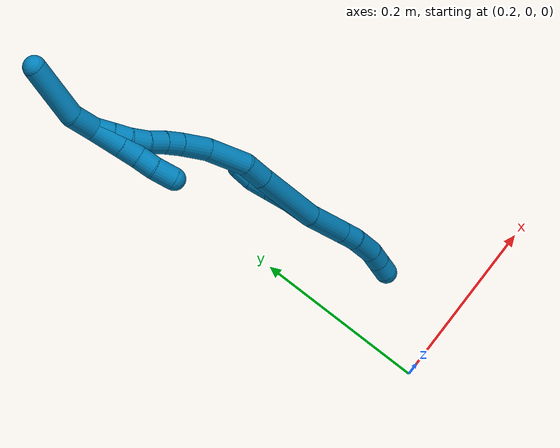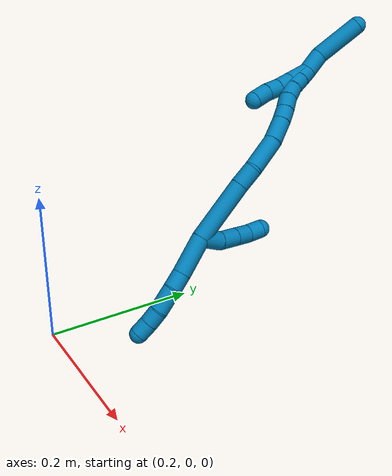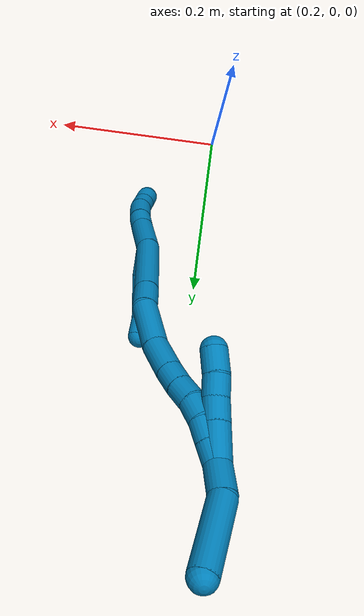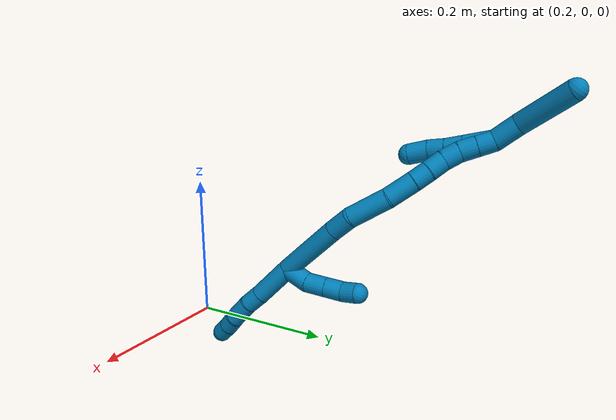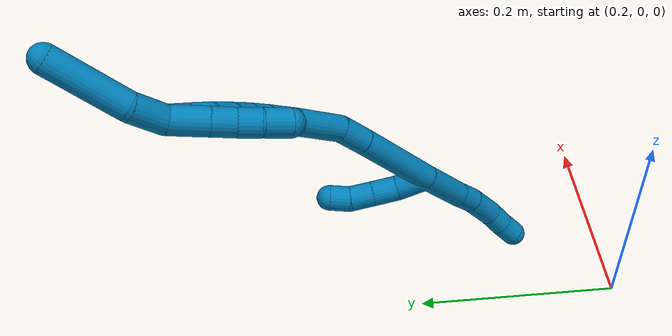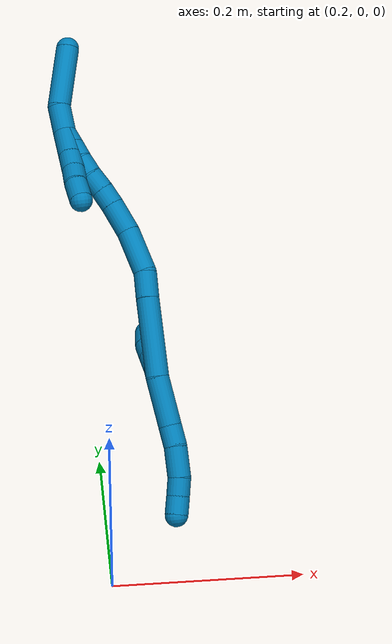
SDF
<sdf version="1.7">
 <world name="default">
  <model name="9">
   <static>0</static>
   <link name="9">
    <collision name="collision-cylinder-e_1_2_8">
     <pose>0.003473 -0.003365 -0.026442 3.01501 0.129565 1.59411</pose>
     <geometry><cylinder><radius>0.0125</radius><length>0.053762</length></cylinder></geometry>
     <surface>
      <friction><ode><mu>1.16</mu><mu2>1.16</mu2><slip1>0</slip1><slip2>0</slip2></ode></friction>
      <contact><ode><kp>1e+06</kp><kd>1</kd><max_vel>0</max_vel><min_depth>0.001</min_depth></ode></contact>
     </surface>
    </collision>
    <visual name="visual-cylinder-e_1_2_8">
     <pose>0.003473 -0.003365 -0.026442 3.01501 0.129565 1.59411</pose>
     <geometry><cylinder><radius>0.0125</radius><length>0.053762</length></cylinder></geometry>
     <material><ambient>0 0.490196 0.709804 1</ambient></material>
    </visual>
    <collision name="collision-cylinder-e_2_8_9">
     <pose>0.008404 -0.008839 -0.063918 2.95278 0.129008 1.19731</pose>
     <geometry><cylinder><radius>0.0125</radius><length>0.022655</length></cylinder></geometry>
     <surface>
      <friction><ode><mu>1.16</mu><mu2>1.16</mu2><slip1>0</slip1><slip2>0</slip2></ode></friction>
      <contact><ode><kp>1e+06</kp><kd>1</kd><max_vel>0</max_vel><min_depth>0.001</min_depth></ode></contact>
     </surface>
    </collision>
    <visual name="visual-cylinder-e_2_8_9">
     <pose>0.008404 -0.008839 -0.063918 2.95278 0.129008 1.19731</pose>
     <geometry><cylinder><radius>0.0125</radius><length>0.022655</length></cylinder></geometry>
     <material><ambient>0 0.490196 0.709804 1</ambient></material>
    </visual>
    <collision name="collision-cylinder-e_3_9_10">
     <pose>0.009869 -0.012651 -0.091539 3.03925 0.00047 0.009181</pose>
     <geometry><cylinder><radius>0.0125</radius><length>0.033347</length></cylinder></geometry>
     <surface>
      <friction><ode><mu>1.16</mu><mu2>1.16</mu2><slip1>0</slip1><slip2>0</slip2></ode></friction>
      <contact><ode><kp>1e+06</kp><kd>1</kd><max_vel>0</max_vel><min_depth>0.001</min_depth></ode></contact>
     </surface>
    </collision>
    <visual name="visual-cylinder-e_3_9_10">
     <pose>0.009869 -0.012651 -0.091539 3.03925 0.00047 0.009181</pose>
     <geometry><cylinder><radius>0.0125</radius><length>0.033347</length></cylinder></geometry>
     <material><ambient>0 0.490196 0.709804 1</ambient></material>
    </visual>
    <collision name="collision-cylinder-e_4_10_11">
     <pose>0.007974 -0.015174 -0.117927 3.05813 -0.191004 -2.31951</pose>
     <geometry><cylinder><radius>0.0125</radius><length>0.020038</length></cylinder></geometry>
     <surface>
      <friction><ode><mu>1.16</mu><mu2>1.16</mu2><slip1>0</slip1><slip2>0</slip2></ode></friction>
      <contact><ode><kp>1e+06</kp><kd>1</kd><max_vel>0</max_vel><min_depth>0.001</min_depth></ode></contact>
     </surface>
    </collision>
    <visual name="visual-cylinder-e_4_10_11">
     <pose>0.007974 -0.015174 -0.117927 3.05813 -0.191004 -2.31951</pose>
     <geometry><cylinder><radius>0.0125</radius><length>0.020038</length></cylinder></geometry>
     <material><ambient>0 0.490196 0.709804 1</ambient></material>
    </visual>
    <collision name="collision-cylinder-e_5_11_6">
     <pose>0.003952 -0.017595 -0.137473 2.97877 -0.211567 -1.8312</pose>
     <geometry><cylinder><radius>0.0125</radius><length>0.020198</length></cylinder></geometry>
     <surface>
      <friction><ode><mu>1.16</mu><mu2>1.16</mu2><slip1>0</slip1><slip2>0</slip2></ode></friction>
      <contact><ode><kp>1e+06</kp><kd>1</kd><max_vel>0</max_vel><min_depth>0.001</min_depth></ode></contact>
     </surface>
    </collision>
    <visual name="visual-cylinder-e_5_11_6">
     <pose>0.003952 -0.017595 -0.137473 2.97877 -0.211567 -1.8312</pose>
     <geometry><cylinder><radius>0.0125</radius><length>0.020198</length></cylinder></geometry>
     <material><ambient>0 0.490196 0.709804 1</ambient></material>
    </visual>
    <collision name="collision-cylinder-e_1_2_12">
     <pose>0.000384 0.015226 0.003336 -1.35508 0.02461 -0.019801</pose>
     <geometry><cylinder><radius>0.0125</radius><length>0.031184</length></cylinder></geometry>
     <surface>
      <friction><ode><mu>1.16</mu><mu2>1.16</mu2><slip1>0</slip1><slip2>0</slip2></ode></friction>
      <contact><ode><kp>1e+06</kp><kd>1</kd><max_vel>0</max_vel><min_depth>0.001</min_depth></ode></contact>
     </surface>
    </collision>
    <visual name="visual-cylinder-e_1_2_12">
     <pose>0.000384 0.015226 0.003336 -1.35508 0.02461 -0.019801</pose>
     <geometry><cylinder><radius>0.0125</radius><length>0.031184</length></cylinder></geometry>
     <material><ambient>0 0.490196 0.709804 1</ambient></material>
    </visual>
    <collision name="collision-cylinder-e_2_12_13">
     <pose>-0.000378 0.041471 0.01311 -1.04206 -0.0895 0.05139</pose>
     <geometry><cylinder><radius>0.0125</radius><length>0.025625</length></cylinder></geometry>
     <surface>
      <friction><ode><mu>1.16</mu><mu2>1.16</mu2><slip1>0</slip1><slip2>0</slip2></ode></friction>
      <contact><ode><kp>1e+06</kp><kd>1</kd><max_vel>0</max_vel><min_depth>0.001</min_depth></ode></contact>
     </surface>
    </collision>
    <visual name="visual-cylinder-e_2_12_13">
     <pose>-0.000378 0.041471 0.01311 -1.04206 -0.0895 0.05139</pose>
     <geometry><cylinder><radius>0.0125</radius><length>0.025625</length></cylinder></geometry>
     <material><ambient>0 0.490196 0.709804 1</ambient></material>
    </visual>
    <collision name="collision-cylinder-e_3_13_14">
     <pose>-0.002503 0.062311 0.02532 -1.03948 -0.085835 0.049137</pose>
     <geometry><cylinder><radius>0.0125</radius><length>0.022869</length></cylinder></geometry>
     <surface>
      <friction><ode><mu>1.16</mu><mu2>1.16</mu2><slip1>0</slip1><slip2>0</slip2></ode></friction>
      <contact><ode><kp>1e+06</kp><kd>1</kd><max_vel>0</max_vel><min_depth>0.001</min_depth></ode></contact>
     </surface>
    </collision>
    <visual name="visual-cylinder-e_3_13_14">
     <pose>-0.002503 0.062311 0.02532 -1.03948 -0.085835 0.049137</pose>
     <geometry><cylinder><radius>0.0125</radius><length>0.022869</length></cylinder></geometry>
     <material><ambient>0 0.490196 0.709804 1</ambient></material>
    </visual>
    <collision name="collision-cylinder-e_4_14_5">
     <pose>-0.00238 0.079524 0.037977 -0.820815 0.108872 -0.04741</pose>
     <geometry><cylinder><radius>0.0125</radius><length>0.020322</length></cylinder></geometry>
     <surface>
      <friction><ode><mu>1.16</mu><mu2>1.16</mu2><slip1>0</slip1><slip2>0</slip2></ode></friction>
      <contact><ode><kp>1e+06</kp><kd>1</kd><max_vel>0</max_vel><min_depth>0.001</min_depth></ode></contact>
     </surface>
    </collision>
    <visual name="visual-cylinder-e_4_14_5">
     <pose>-0.00238 0.079524 0.037977 -0.820815 0.108872 -0.04741</pose>
     <geometry><cylinder><radius>0.0125</radius><length>0.020322</length></cylinder></geometry>
     <material><ambient>0 0.490196 0.709804 1</ambient></material>
    </visual>
    <collision name="collision-cylinder-e_1_2_15">
     <pose>0.000225 0.008022 0.042209 -0.187819 0.005244 -0.000494</pose>
     <geometry><cylinder><radius>0.0125</radius><length>0.08593</length></cylinder></geometry>
     <surface>
      <friction><ode><mu>1.16</mu><mu2>1.16</mu2><slip1>0</slip1><slip2>0</slip2></ode></friction>
      <contact><ode><kp>1e+06</kp><kd>1</kd><max_vel>0</max_vel><min_depth>0.001</min_depth></ode></contact>
     </surface>
    </collision>
    <visual name="visual-cylinder-e_1_2_15">
     <pose>0.000225 0.008022 0.042209 -0.187819 0.005244 -0.000494</pose>
     <geometry><cylinder><radius>0.0125</radius><length>0.08593</length></cylinder></geometry>
     <material><ambient>0 0.490196 0.709804 1</ambient></material>
    </visual>
    <collision name="collision-cylinder-e_2_15_16">
     <pose>0.000945 0.019308 0.098313 -0.230665 0.034647 -0.004014</pose>
     <geometry><cylinder><radius>0.0125</radius><length>0.028564</length></cylinder></geometry>
     <surface>
      <friction><ode><mu>1.16</mu><mu2>1.16</mu2><slip1>0</slip1><slip2>0</slip2></ode></friction>
      <contact><ode><kp>1e+06</kp><kd>1</kd><max_vel>0</max_vel><min_depth>0.001</min_depth></ode></contact>
     </surface>
    </collision>
    <visual name="visual-cylinder-e_2_15_16">
     <pose>0.000945 0.019308 0.098313 -0.230665 0.034647 -0.004014</pose>
     <geometry><cylinder><radius>0.0125</radius><length>0.028564</length></cylinder></geometry>
     <material><ambient>0 0.490196 0.709804 1</ambient></material>
    </visual>
    <collision name="collision-cylinder-e_3_16_17">
     <pose>-0.004479 0.031639 0.134667 -0.383758 -0.239674 0.046777</pose>
     <geometry><cylinder><radius>0.0125</radius><length>0.049868</length></cylinder></geometry>
     <surface>
      <friction><ode><mu>1.16</mu><mu2>1.16</mu2><slip1>0</slip1><slip2>0</slip2></ode></friction>
      <contact><ode><kp>1e+06</kp><kd>1</kd><max_vel>0</max_vel><min_depth>0.001</min_depth></ode></contact>
     </surface>
    </collision>
    <visual name="visual-cylinder-e_3_16_17">
     <pose>-0.004479 0.031639 0.134667 -0.383758 -0.239674 0.046777</pose>
     <geometry><cylinder><radius>0.0125</radius><length>0.049868</length></cylinder></geometry>
     <material><ambient>0 0.490196 0.709804 1</ambient></material>
    </visual>
    <collision name="collision-cylinder-e_4_17_18">
     <pose>-0.016988 0.044914 0.172426 -0.268317 -0.393652 0.053815</pose>
     <geometry><cylinder><radius>0.0125</radius><length>0.034362</length></cylinder></geometry>
     <surface>
      <friction><ode><mu>1.16</mu><mu2>1.16</mu2><slip1>0</slip1><slip2>0</slip2></ode></friction>
      <contact><ode><kp>1e+06</kp><kd>1</kd><max_vel>0</max_vel><min_depth>0.001</min_depth></ode></contact>
     </surface>
    </collision>
    <visual name="visual-cylinder-e_4_17_18">
     <pose>-0.016988 0.044914 0.172426 -0.268317 -0.393652 0.053815</pose>
     <geometry><cylinder><radius>0.0125</radius><length>0.034362</length></cylinder></geometry>
     <material><ambient>0 0.490196 0.709804 1</ambient></material>
    </visual>
    <collision name="collision-cylinder-e_5_18_19">
     <pose>-0.027982 0.051199 0.196476 -0.233162 -0.455304 0.054249</pose>
     <geometry><cylinder><radius>0.0125</radius><length>0.02003</length></cylinder></geometry>
     <surface>
      <friction><ode><mu>1.16</mu><mu2>1.16</mu2><slip1>0</slip1><slip2>0</slip2></ode></friction>
      <contact><ode><kp>1e+06</kp><kd>1</kd><max_vel>0</max_vel><min_depth>0.001</min_depth></ode></contact>
     </surface>
    </collision>
    <visual name="visual-cylinder-e_5_18_19">
     <pose>-0.027982 0.051199 0.196476 -0.233162 -0.455304 0.054249</pose>
     <geometry><cylinder><radius>0.0125</radius><length>0.02003</length></cylinder></geometry>
     <material><ambient>0 0.490196 0.709804 1</ambient></material>
    </visual>
    <collision name="collision-cylinder-e_6_19_20">
     <pose>-0.03767 0.054952 0.214041 -0.187756 -0.532287 0.051324</pose>
     <geometry><cylinder><radius>0.0125</radius><length>0.020824</length></cylinder></geometry>
     <surface>
      <friction><ode><mu>1.16</mu><mu2>1.16</mu2><slip1>0</slip1><slip2>0</slip2></ode></friction>
      <contact><ode><kp>1e+06</kp><kd>1</kd><max_vel>0</max_vel><min_depth>0.001</min_depth></ode></contact>
     </surface>
    </collision>
    <visual name="visual-cylinder-e_6_19_20">
     <pose>-0.03767 0.054952 0.214041 -0.187756 -0.532287 0.051324</pose>
     <geometry><cylinder><radius>0.0125</radius><length>0.020824</length></cylinder></geometry>
     <material><ambient>0 0.490196 0.709804 1</ambient></material>
    </visual>
    <collision name="collision-cylinder-e_7_20_21">
     <pose>-0.047106 0.059855 0.231522 -0.356561 -0.422022 0.077156</pose>
     <geometry><cylinder><radius>0.0125</radius><length>0.020277</length></cylinder></geometry>
     <surface>
      <friction><ode><mu>1.16</mu><mu2>1.16</mu2><slip1>0</slip1><slip2>0</slip2></ode></friction>
      <contact><ode><kp>1e+06</kp><kd>1</kd><max_vel>0</max_vel><min_depth>0.001</min_depth></ode></contact>
     </surface>
    </collision>
    <visual name="visual-cylinder-e_7_20_21">
     <pose>-0.047106 0.059855 0.231522 -0.356561 -0.422022 0.077156</pose>
     <geometry><cylinder><radius>0.0125</radius><length>0.020277</length></cylinder></geometry>
     <material><ambient>0 0.490196 0.709804 1</ambient></material>
    </visual>
    <collision name="collision-cylinder-e_8_21_22">
     <pose>-0.054474 0.0682 0.24824 -0.566112 -0.325074 0.095322</pose>
     <geometry><cylinder><radius>0.0125</radius><length>0.020133</length></cylinder></geometry>
     <surface>
      <friction><ode><mu>1.16</mu><mu2>1.16</mu2><slip1>0</slip1><slip2>0</slip2></ode></friction>
      <contact><ode><kp>1e+06</kp><kd>1</kd><max_vel>0</max_vel><min_depth>0.001</min_depth></ode></contact>
     </surface>
    </collision>
    <visual name="visual-cylinder-e_8_21_22">
     <pose>-0.054474 0.0682 0.24824 -0.566112 -0.325074 0.095322</pose>
     <geometry><cylinder><radius>0.0125</radius><length>0.020133</length></cylinder></geometry>
     <material><ambient>0 0.490196 0.709804 1</ambient></material>
    </visual>
    <collision name="collision-cylinder-e_9_22_1">
     <pose>-0.06104 0.07835 0.264264 -0.563228 -0.34143 0.099665</pose>
     <geometry><cylinder><radius>0.0125</radius><length>0.020014</length></cylinder></geometry>
     <surface>
      <friction><ode><mu>1.16</mu><mu2>1.16</mu2><slip1>0</slip1><slip2>0</slip2></ode></friction>
      <contact><ode><kp>1e+06</kp><kd>1</kd><max_vel>0</max_vel><min_depth>0.001</min_depth></ode></contact>
     </surface>
    </collision>
    <visual name="visual-cylinder-e_9_22_1">
     <pose>-0.06104 0.07835 0.264264 -0.563228 -0.34143 0.099665</pose>
     <geometry><cylinder><radius>0.0125</radius><length>0.020014</length></cylinder></geometry>
     <material><ambient>0 0.490196 0.709804 1</ambient></material>
    </visual>
    <collision name="collision-cylinder-e_1_1_23">
     <pose>-0.065605 0.087493 0.287164 -0.268555 -0.07827 0.010579</pose>
     <geometry><cylinder><radius>0.0125</radius><length>0.031059</length></cylinder></geometry>
     <surface>
      <friction><ode><mu>1.16</mu><mu2>1.16</mu2><slip1>0</slip1><slip2>0</slip2></ode></friction>
      <contact><ode><kp>1e+06</kp><kd>1</kd><max_vel>0</max_vel><min_depth>0.001</min_depth></ode></contact>
     </surface>
    </collision>
    <visual name="visual-cylinder-e_1_1_23">
     <pose>-0.065605 0.087493 0.287164 -0.268555 -0.07827 0.010579</pose>
     <geometry><cylinder><radius>0.0125</radius><length>0.031059</length></cylinder></geometry>
     <material><ambient>0 0.490196 0.709804 1</ambient></material>
    </visual>
    <collision name="collision-cylinder-e_2_23_4">
     <pose>-0.058064 0.102484 0.333605 -0.332527 0.256792 -0.043325</pose>
     <geometry><cylinder><radius>0.0125</radius><length>0.068941</length></cylinder></geometry>
     <surface>
      <friction><ode><mu>1.16</mu><mu2>1.16</mu2><slip1>0</slip1><slip2>0</slip2></ode></friction>
      <contact><ode><kp>1e+06</kp><kd>1</kd><max_vel>0</max_vel><min_depth>0.001</min_depth></ode></contact>
     </surface>
    </collision>
    <visual name="visual-cylinder-e_2_23_4">
     <pose>-0.058064 0.102484 0.333605 -0.332527 0.256792 -0.043325</pose>
     <geometry><cylinder><radius>0.0125</radius><length>0.068941</length></cylinder></geometry>
     <material><ambient>0 0.490196 0.709804 1</ambient></material>
    </visual>
    <collision name="collision-cylinder-e_1_1_24">
     <pose>-0.063361 0.072361 0.259274 2.43687 0.060407 0.163962</pose>
     <geometry><cylinder><radius>0.0125</radius><length>0.034095</length></cylinder></geometry>
     <surface>
      <friction><ode><mu>1.16</mu><mu2>1.16</mu2><slip1>0</slip1><slip2>0</slip2></ode></friction>
      <contact><ode><kp>1e+06</kp><kd>1</kd><max_vel>0</max_vel><min_depth>0.001</min_depth></ode></contact>
     </surface>
    </collision>
    <visual name="visual-cylinder-e_1_1_24">
     <pose>-0.063361 0.072361 0.259274 2.43687 0.060407 0.163962</pose>
     <geometry><cylinder><radius>0.0125</radius><length>0.034095</length></cylinder></geometry>
     <material><ambient>0 0.490196 0.709804 1</ambient></material>
    </visual>
    <collision name="collision-cylinder-e_2_24_25">
     <pose>-0.061731 0.054424 0.238187 2.43648 0.056252 0.152632</pose>
     <geometry><cylinder><radius>0.0125</radius><length>0.021369</length></cylinder></geometry>
     <surface>
      <friction><ode><mu>1.16</mu><mu2>1.16</mu2><slip1>0</slip1><slip2>0</slip2></ode></friction>
      <contact><ode><kp>1e+06</kp><kd>1</kd><max_vel>0</max_vel><min_depth>0.001</min_depth></ode></contact>
     </surface>
    </collision>
    <visual name="visual-cylinder-e_2_24_25">
     <pose>-0.061731 0.054424 0.238187 2.43648 0.056252 0.152632</pose>
     <geometry><cylinder><radius>0.0125</radius><length>0.021369</length></cylinder></geometry>
     <material><ambient>0 0.490196 0.709804 1</ambient></material>
    </visual>
    <collision name="collision-cylinder-e_3_25_26">
     <pose>-0.060999 0.040188 0.22294 2.3425 0.012886 0.030514</pose>
     <geometry><cylinder><radius>0.0125</radius><length>0.020433</length></cylinder></geometry>
     <surface>
      <friction><ode><mu>1.16</mu><mu2>1.16</mu2><slip1>0</slip1><slip2>0</slip2></ode></friction>
      <contact><ode><kp>1e+06</kp><kd>1</kd><max_vel>0</max_vel><min_depth>0.001</min_depth></ode></contact>
     </surface>
    </collision>
    <visual name="visual-cylinder-e_3_25_26">
     <pose>-0.060999 0.040188 0.22294 2.3425 0.012886 0.030514</pose>
     <geometry><cylinder><radius>0.0125</radius><length>0.020433</length></cylinder></geometry>
     <material><ambient>0 0.490196 0.709804 1</ambient></material>
    </visual>
    <collision name="collision-cylinder-e_4_26_3">
     <pose>-0.059387 0.025347 0.206515 2.46169 0.123124 0.345098</pose>
     <geometry><cylinder><radius>0.0125</radius><length>0.024103</length></cylinder></geometry>
     <surface>
      <friction><ode><mu>1.16</mu><mu2>1.16</mu2><slip1>0</slip1><slip2>0</slip2></ode></friction>
      <contact><ode><kp>1e+06</kp><kd>1</kd><max_vel>0</max_vel><min_depth>0.001</min_depth></ode></contact>
     </surface>
    </collision>
    <visual name="visual-cylinder-e_4_26_3">
     <pose>-0.059387 0.025347 0.206515 2.46169 0.123124 0.345098</pose>
     <geometry><cylinder><radius>0.0125</radius><length>0.024103</length></cylinder></geometry>
     <material><ambient>0 0.490196 0.709804 1</ambient></material>
    </visual>
    <collision name="collision-sphere-3">
     <pose>-0.057907 0.017827 0.197214 0 -0 0</pose>
     <geometry><sphere><radius>0.0125</radius></sphere></geometry>
     <surface>
      <friction><ode><mu>1.16</mu><mu2>1.16</mu2><slip1>0</slip1><slip2>0</slip2></ode></friction>
      <contact><ode><kp>1e+06</kp><kd>1</kd><max_vel>0</max_vel><min_depth>0.001</min_depth></ode></contact>
     </surface>
    </collision>
    <visual name="visual-sphere-3">
     <pose>-0.057907 0.017827 0.197214 0 -0 0</pose>
     <geometry><sphere><radius>0.0125</radius></sphere></geometry>
     <material><ambient>0 0.490196 0.709804 1</ambient></material>
    </visual>
    <collision name="collision-sphere-26">
     <pose>-0.060867 0.032866 0.215816 0 -0 0</pose>
     <geometry><sphere><radius>0.0125</radius></sphere></geometry>
     <surface>
      <friction><ode><mu>1.16</mu><mu2>1.16</mu2><slip1>0</slip1><slip2>0</slip2></ode></friction>
      <contact><ode><kp>1e+06</kp><kd>1</kd><max_vel>0</max_vel><min_depth>0.001</min_depth></ode></contact>
     </surface>
    </collision>
    <visual name="visual-sphere-26">
     <pose>-0.060867 0.032866 0.215816 0 -0 0</pose>
     <geometry><sphere><radius>0.0125</radius></sphere></geometry>
     <material><ambient>0 0.490196 0.709804 1</ambient></material>
    </visual>
    <collision name="collision-sphere-25">
     <pose>-0.061131 0.04751 0.230064 0 -0 0</pose>
     <geometry><sphere><radius>0.0125</radius></sphere></geometry>
     <surface>
      <friction><ode><mu>1.16</mu><mu2>1.16</mu2><slip1>0</slip1><slip2>0</slip2></ode></friction>
      <contact><ode><kp>1e+06</kp><kd>1</kd><max_vel>0</max_vel><min_depth>0.001</min_depth></ode></contact>
     </surface>
    </collision>
    <visual name="visual-sphere-25">
     <pose>-0.061131 0.04751 0.230064 0 -0 0</pose>
     <geometry><sphere><radius>0.0125</radius></sphere></geometry>
     <material><ambient>0 0.490196 0.709804 1</ambient></material>
    </visual>
    <collision name="collision-sphere-24">
     <pose>-0.062332 0.061338 0.246311 0 -0 0</pose>
     <geometry><sphere><radius>0.0125</radius></sphere></geometry>
     <surface>
      <friction><ode><mu>1.16</mu><mu2>1.16</mu2><slip1>0</slip1><slip2>0</slip2></ode></friction>
      <contact><ode><kp>1e+06</kp><kd>1</kd><max_vel>0</max_vel><min_depth>0.001</min_depth></ode></contact>
     </surface>
    </collision>
    <visual name="visual-sphere-24">
     <pose>-0.062332 0.061338 0.246311 0 -0 0</pose>
     <geometry><sphere><radius>0.0125</radius></sphere></geometry>
     <material><ambient>0 0.490196 0.709804 1</ambient></material>
    </visual>
    <collision name="collision-sphere-4">
     <pose>-0.049309 0.113367 0.365118 0 -0 0</pose>
     <geometry><sphere><radius>0.0125</radius></sphere></geometry>
     <surface>
      <friction><ode><mu>1.16</mu><mu2>1.16</mu2><slip1>0</slip1><slip2>0</slip2></ode></friction>
      <contact><ode><kp>1e+06</kp><kd>1</kd><max_vel>0</max_vel><min_depth>0.001</min_depth></ode></contact>
     </surface>
    </collision>
    <visual name="visual-sphere-4">
     <pose>-0.049309 0.113367 0.365118 0 -0 0</pose>
     <geometry><sphere><radius>0.0125</radius></sphere></geometry>
     <material><ambient>0 0.490196 0.709804 1</ambient></material>
    </visual>
    <collision name="collision-sphere-23">
     <pose>-0.066819 0.091601 0.302091 0 -0 0</pose>
     <geometry><sphere><radius>0.0125</radius></sphere></geometry>
     <surface>
      <friction><ode><mu>1.16</mu><mu2>1.16</mu2><slip1>0</slip1><slip2>0</slip2></ode></friction>
      <contact><ode><kp>1e+06</kp><kd>1</kd><max_vel>0</max_vel><min_depth>0.001</min_depth></ode></contact>
     </surface>
    </collision>
    <visual name="visual-sphere-23">
     <pose>-0.066819 0.091601 0.302091 0 -0 0</pose>
     <geometry><sphere><radius>0.0125</radius></sphere></geometry>
     <material><ambient>0 0.490196 0.709804 1</ambient></material>
    </visual>
    <collision name="collision-sphere-1">
     <pose>-0.064391 0.083385 0.272237 0 -0 0</pose>
     <geometry><sphere><radius>0.0125</radius></sphere></geometry>
     <surface>
      <friction><ode><mu>1.16</mu><mu2>1.16</mu2><slip1>0</slip1><slip2>0</slip2></ode></friction>
      <contact><ode><kp>1e+06</kp><kd>1</kd><max_vel>0</max_vel><min_depth>0.001</min_depth></ode></contact>
     </surface>
    </collision>
    <visual name="visual-sphere-1">
     <pose>-0.064391 0.083385 0.272237 0 -0 0</pose>
     <geometry><sphere><radius>0.0125</radius></sphere></geometry>
     <material><ambient>0 0.490196 0.709804 1</ambient></material>
    </visual>
    <collision name="collision-sphere-22">
     <pose>-0.057689 0.073316 0.256291 0 -0 0</pose>
     <geometry><sphere><radius>0.0125</radius></sphere></geometry>
     <surface>
      <friction><ode><mu>1.16</mu><mu2>1.16</mu2><slip1>0</slip1><slip2>0</slip2></ode></friction>
      <contact><ode><kp>1e+06</kp><kd>1</kd><max_vel>0</max_vel><min_depth>0.001</min_depth></ode></contact>
     </surface>
    </collision>
    <visual name="visual-sphere-22">
     <pose>-0.057689 0.073316 0.256291 0 -0 0</pose>
     <geometry><sphere><radius>0.0125</radius></sphere></geometry>
     <material><ambient>0 0.490196 0.709804 1</ambient></material>
    </visual>
    <collision name="collision-sphere-21">
     <pose>-0.051259 0.063083 0.240189 0 -0 0</pose>
     <geometry><sphere><radius>0.0125</radius></sphere></geometry>
     <surface>
      <friction><ode><mu>1.16</mu><mu2>1.16</mu2><slip1>0</slip1><slip2>0</slip2></ode></friction>
      <contact><ode><kp>1e+06</kp><kd>1</kd><max_vel>0</max_vel><min_depth>0.001</min_depth></ode></contact>
     </surface>
    </collision>
    <visual name="visual-sphere-21">
     <pose>-0.051259 0.063083 0.240189 0 -0 0</pose>
     <geometry><sphere><radius>0.0125</radius></sphere></geometry>
     <material><ambient>0 0.490196 0.709804 1</ambient></material>
    </visual>
    <collision name="collision-sphere-6">
     <pose>0.001831 -0.019195 -0.147216 0 -0 0</pose>
     <geometry><sphere><radius>0.0125</radius></sphere></geometry>
     <surface>
      <friction><ode><mu>1.16</mu><mu2>1.16</mu2><slip1>0</slip1><slip2>0</slip2></ode></friction>
      <contact><ode><kp>1e+06</kp><kd>1</kd><max_vel>0</max_vel><min_depth>0.001</min_depth></ode></contact>
     </surface>
    </collision>
    <visual name="visual-sphere-6">
     <pose>0.001831 -0.019195 -0.147216 0 -0 0</pose>
     <geometry><sphere><radius>0.0125</radius></sphere></geometry>
     <material><ambient>0 0.490196 0.709804 1</ambient></material>
    </visual>
    <collision name="collision-sphere-11">
     <pose>0.006072 -0.015994 -0.12773 0 -0 0</pose>
     <geometry><sphere><radius>0.0125</radius></sphere></geometry>
     <surface>
      <friction><ode><mu>1.16</mu><mu2>1.16</mu2><slip1>0</slip1><slip2>0</slip2></ode></friction>
      <contact><ode><kp>1e+06</kp><kd>1</kd><max_vel>0</max_vel><min_depth>0.001</min_depth></ode></contact>
     </surface>
    </collision>
    <visual name="visual-sphere-11">
     <pose>0.006072 -0.015994 -0.12773 0 -0 0</pose>
     <geometry><sphere><radius>0.0125</radius></sphere></geometry>
     <material><ambient>0 0.490196 0.709804 1</ambient></material>
    </visual>
    <collision name="collision-sphere-10">
     <pose>0.009876 -0.014354 -0.108125 0 -0 0</pose>
     <geometry><sphere><radius>0.0125</radius></sphere></geometry>
     <surface>
      <friction><ode><mu>1.16</mu><mu2>1.16</mu2><slip1>0</slip1><slip2>0</slip2></ode></friction>
      <contact><ode><kp>1e+06</kp><kd>1</kd><max_vel>0</max_vel><min_depth>0.001</min_depth></ode></contact>
     </surface>
    </collision>
    <visual name="visual-sphere-10">
     <pose>0.009876 -0.014354 -0.108125 0 -0 0</pose>
     <geometry><sphere><radius>0.0125</radius></sphere></geometry>
     <material><ambient>0 0.490196 0.709804 1</ambient></material>
    </visual>
    <collision name="collision-sphere-9">
     <pose>0.009861 -0.010947 -0.074952 0 -0 0</pose>
     <geometry><sphere><radius>0.0125</radius></sphere></geometry>
     <surface>
      <friction><ode><mu>1.16</mu><mu2>1.16</mu2><slip1>0</slip1><slip2>0</slip2></ode></friction>
      <contact><ode><kp>1e+06</kp><kd>1</kd><max_vel>0</max_vel><min_depth>0.001</min_depth></ode></contact>
     </surface>
    </collision>
    <visual name="visual-sphere-9">
     <pose>0.009861 -0.010947 -0.074952 0 -0 0</pose>
     <geometry><sphere><radius>0.0125</radius></sphere></geometry>
     <material><ambient>0 0.490196 0.709804 1</ambient></material>
    </visual>
    <collision name="collision-sphere-2">
     <geometry><sphere><radius>0.0125</radius></sphere></geometry>
     <surface>
      <friction><ode><mu>1.16</mu><mu2>1.16</mu2><slip1>0</slip1><slip2>0</slip2></ode></friction>
      <contact><ode><kp>1e+06</kp><kd>1</kd><max_vel>0</max_vel><min_depth>0.001</min_depth></ode></contact>
     </surface>
    </collision>
    <visual name="visual-sphere-2">
     <geometry><sphere><radius>0.0125</radius></sphere></geometry>
     <material><ambient>0 0.490196 0.709804 1</ambient></material>
    </visual>
    <collision name="collision-sphere-19">
     <pose>-0.032386 0.053277 0.205227 0 -0 0</pose>
     <geometry><sphere><radius>0.0125</radius></sphere></geometry>
     <surface>
      <friction><ode><mu>1.16</mu><mu2>1.16</mu2><slip1>0</slip1><slip2>0</slip2></ode></friction>
      <contact><ode><kp>1e+06</kp><kd>1</kd><max_vel>0</max_vel><min_depth>0.001</min_depth></ode></contact>
     </surface>
    </collision>
    <visual name="visual-sphere-19">
     <pose>-0.032386 0.053277 0.205227 0 -0 0</pose>
     <geometry><sphere><radius>0.0125</radius></sphere></geometry>
     <material><ambient>0 0.490196 0.709804 1</ambient></material>
    </visual>
    <collision name="collision-sphere-8">
     <pose>0.006946 -0.00673 -0.052885 0 -0 0</pose>
     <geometry><sphere><radius>0.0125</radius></sphere></geometry>
     <surface>
      <friction><ode><mu>1.16</mu><mu2>1.16</mu2><slip1>0</slip1><slip2>0</slip2></ode></friction>
      <contact><ode><kp>1e+06</kp><kd>1</kd><max_vel>0</max_vel><min_depth>0.001</min_depth></ode></contact>
     </surface>
    </collision>
    <visual name="visual-sphere-8">
     <pose>0.006946 -0.00673 -0.052885 0 -0 0</pose>
     <geometry><sphere><radius>0.0125</radius></sphere></geometry>
     <material><ambient>0 0.490196 0.709804 1</ambient></material>
    </visual>
    <collision name="collision-sphere-12">
     <pose>0.000767 0.030452 0.006673 0 -0 0</pose>
     <geometry><sphere><radius>0.0125</radius></sphere></geometry>
     <surface>
      <friction><ode><mu>1.16</mu><mu2>1.16</mu2><slip1>0</slip1><slip2>0</slip2></ode></friction>
      <contact><ode><kp>1e+06</kp><kd>1</kd><max_vel>0</max_vel><min_depth>0.001</min_depth></ode></contact>
     </surface>
    </collision>
    <visual name="visual-sphere-12">
     <pose>0.000767 0.030452 0.006673 0 -0 0</pose>
     <geometry><sphere><radius>0.0125</radius></sphere></geometry>
     <material><ambient>0 0.490196 0.709804 1</ambient></material>
    </visual>
    <collision name="collision-sphere-13">
     <pose>-0.001523 0.052489 0.019547 0 -0 0</pose>
     <geometry><sphere><radius>0.0125</radius></sphere></geometry>
     <surface>
      <friction><ode><mu>1.16</mu><mu2>1.16</mu2><slip1>0</slip1><slip2>0</slip2></ode></friction>
      <contact><ode><kp>1e+06</kp><kd>1</kd><max_vel>0</max_vel><min_depth>0.001</min_depth></ode></contact>
     </surface>
    </collision>
    <visual name="visual-sphere-13">
     <pose>-0.001523 0.052489 0.019547 0 -0 0</pose>
     <geometry><sphere><radius>0.0125</radius></sphere></geometry>
     <material><ambient>0 0.490196 0.709804 1</ambient></material>
    </visual>
    <collision name="collision-sphere-14">
     <pose>-0.003484 0.072133 0.031092 0 -0 0</pose>
     <geometry><sphere><radius>0.0125</radius></sphere></geometry>
     <surface>
      <friction><ode><mu>1.16</mu><mu2>1.16</mu2><slip1>0</slip1><slip2>0</slip2></ode></friction>
      <contact><ode><kp>1e+06</kp><kd>1</kd><max_vel>0</max_vel><min_depth>0.001</min_depth></ode></contact>
     </surface>
    </collision>
    <visual name="visual-sphere-14">
     <pose>-0.003484 0.072133 0.031092 0 -0 0</pose>
     <geometry><sphere><radius>0.0125</radius></sphere></geometry>
     <material><ambient>0 0.490196 0.709804 1</ambient></material>
    </visual>
    <collision name="collision-sphere-5">
     <pose>-0.001276 0.086915 0.044862 0 -0 0</pose>
     <geometry><sphere><radius>0.0125</radius></sphere></geometry>
     <surface>
      <friction><ode><mu>1.16</mu><mu2>1.16</mu2><slip1>0</slip1><slip2>0</slip2></ode></friction>
      <contact><ode><kp>1e+06</kp><kd>1</kd><max_vel>0</max_vel><min_depth>0.001</min_depth></ode></contact>
     </surface>
    </collision>
    <visual name="visual-sphere-5">
     <pose>-0.001276 0.086915 0.044862 0 -0 0</pose>
     <geometry><sphere><radius>0.0125</radius></sphere></geometry>
     <material><ambient>0 0.490196 0.709804 1</ambient></material>
    </visual>
    <collision name="collision-sphere-15">
     <pose>0.000451 0.016044 0.084418 0 -0 0</pose>
     <geometry><sphere><radius>0.0125</radius></sphere></geometry>
     <surface>
      <friction><ode><mu>1.16</mu><mu2>1.16</mu2><slip1>0</slip1><slip2>0</slip2></ode></friction>
      <contact><ode><kp>1e+06</kp><kd>1</kd><max_vel>0</max_vel><min_depth>0.001</min_depth></ode></contact>
     </surface>
    </collision>
    <visual name="visual-sphere-15">
     <pose>0.000451 0.016044 0.084418 0 -0 0</pose>
     <geometry><sphere><radius>0.0125</radius></sphere></geometry>
     <material><ambient>0 0.490196 0.709804 1</ambient></material>
    </visual>
    <collision name="collision-sphere-16">
     <pose>0.00144 0.022571 0.112208 0 -0 0</pose>
     <geometry><sphere><radius>0.0125</radius></sphere></geometry>
     <surface>
      <friction><ode><mu>1.16</mu><mu2>1.16</mu2><slip1>0</slip1><slip2>0</slip2></ode></friction>
      <contact><ode><kp>1e+06</kp><kd>1</kd><max_vel>0</max_vel><min_depth>0.001</min_depth></ode></contact>
     </surface>
    </collision>
    <visual name="visual-sphere-16">
     <pose>0.00144 0.022571 0.112208 0 -0 0</pose>
     <geometry><sphere><radius>0.0125</radius></sphere></geometry>
     <material><ambient>0 0.490196 0.709804 1</ambient></material>
    </visual>
    <collision name="collision-sphere-17">
     <pose>-0.010398 0.040708 0.157127 0 -0 0</pose>
     <geometry><sphere><radius>0.0125</radius></sphere></geometry>
     <surface>
      <friction><ode><mu>1.16</mu><mu2>1.16</mu2><slip1>0</slip1><slip2>0</slip2></ode></friction>
      <contact><ode><kp>1e+06</kp><kd>1</kd><max_vel>0</max_vel><min_depth>0.001</min_depth></ode></contact>
     </surface>
    </collision>
    <visual name="visual-sphere-17">
     <pose>-0.010398 0.040708 0.157127 0 -0 0</pose>
     <geometry><sphere><radius>0.0125</radius></sphere></geometry>
     <material><ambient>0 0.490196 0.709804 1</ambient></material>
    </visual>
    <collision name="collision-sphere-18">
     <pose>-0.023578 0.049121 0.187725 0 -0 0</pose>
     <geometry><sphere><radius>0.0125</radius></sphere></geometry>
     <surface>
      <friction><ode><mu>1.16</mu><mu2>1.16</mu2><slip1>0</slip1><slip2>0</slip2></ode></friction>
      <contact><ode><kp>1e+06</kp><kd>1</kd><max_vel>0</max_vel><min_depth>0.001</min_depth></ode></contact>
     </surface>
    </collision>
    <visual name="visual-sphere-18">
     <pose>-0.023578 0.049121 0.187725 0 -0 0</pose>
     <geometry><sphere><radius>0.0125</radius></sphere></geometry>
     <material><ambient>0 0.490196 0.709804 1</ambient></material>
    </visual>
    <collision name="collision-sphere-20">
     <pose>-0.042954 0.056626 0.222855 0 -0 0</pose>
     <geometry><sphere><radius>0.0125</radius></sphere></geometry>
     <surface>
      <friction><ode><mu>1.16</mu><mu2>1.16</mu2><slip1>0</slip1><slip2>0</slip2></ode></friction>
      <contact><ode><kp>1e+06</kp><kd>1</kd><max_vel>0</max_vel><min_depth>0.001</min_depth></ode></contact>
     </surface>
    </collision>
    <visual name="visual-sphere-20">
     <pose>-0.042954 0.056626 0.222855 0 -0 0</pose>
     <geometry><sphere><radius>0.0125</radius></sphere></geometry>
     <material><ambient>0 0.490196 0.709804 1</ambient></material>
    </visual>
    <inertial>
     <pose>-0.022313 0.038197 0.118079 0 -0 0</pose>
     <mass>0.75</mass>
     <inertia>
      <ixx>0.00015</ixx>
      <ixy>0</ixy>
      <ixz>0</ixz>
      <iyy>0.000132</iyy>
      <iyz>0</iyz>
      <izz>-1.6e-05</izz>
     </inertia>
    </inertial>
   </link>
   <pose>0.26353 0.19159 0.121019 -0.624753 -0.052291 0.038863</pose>
  </model>
 </world>
</sdf>
